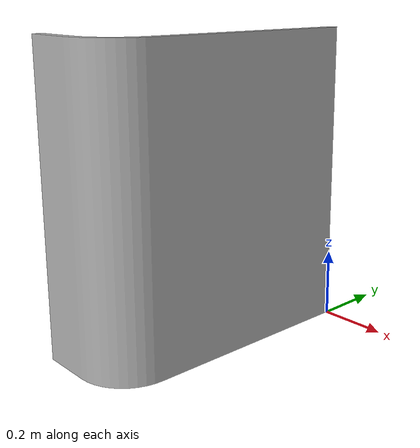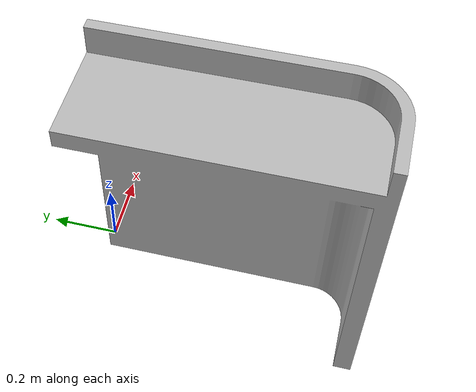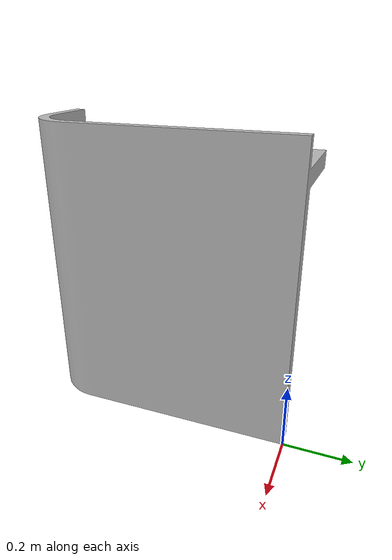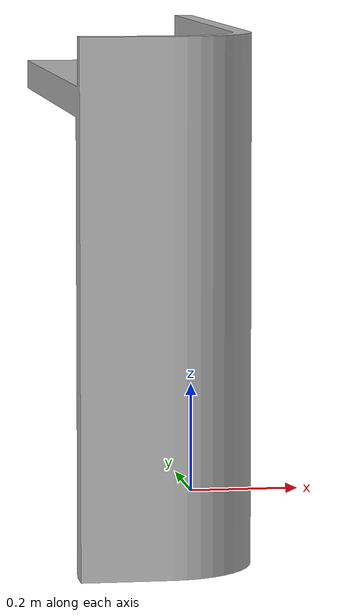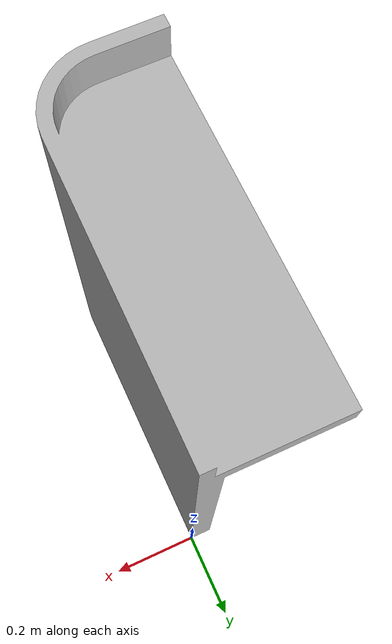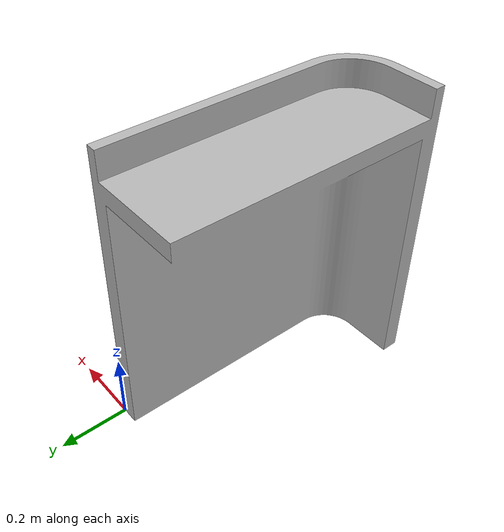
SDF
<?xml version='1.0'?>
<sdf version='1.6'>
	<model name='operation_desk'>
    	<pose>0 0 0 1.570796 0 -1.570796</pose>

		<static>true</static>

		<link name='link'>
			<visual name='visual'>
				<geometry>
					<mesh>
						<uri>model://operation_desk/operation_desk.STL</uri>
						<scale>0.001 0.001 0.001</scale>
					</mesh>
				</geometry>
			</visual>
			<collision name='collision'>
				<geometry>
					<mesh>
						<uri>model://operation_desk/operation_desk.STL</uri>
						<scale>0.001 0.001 0.001</scale>
					</mesh>
				</geometry>
			</collision>
		</link>
	</model>
</sdf>
